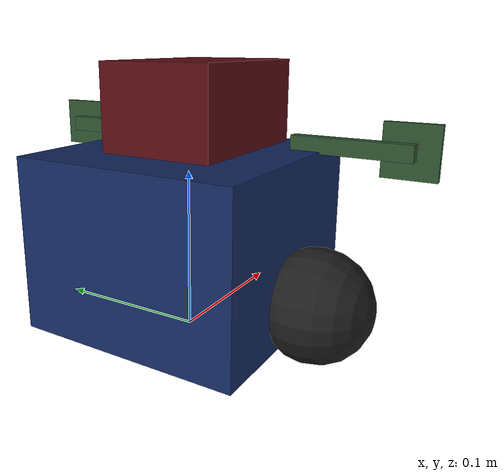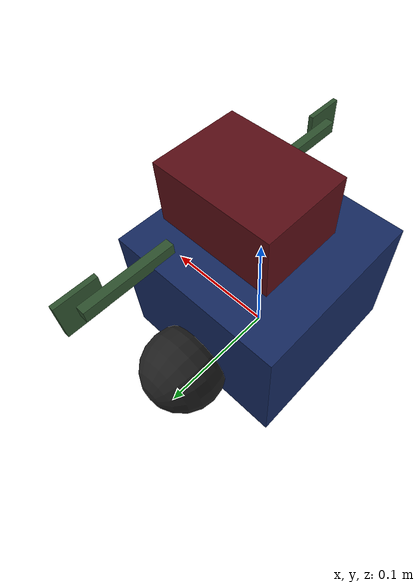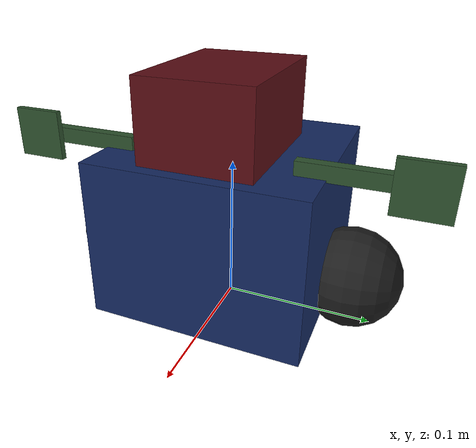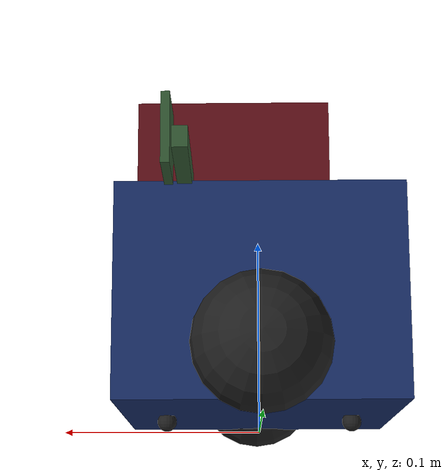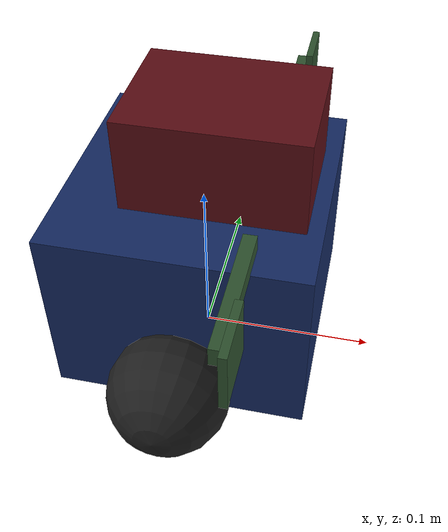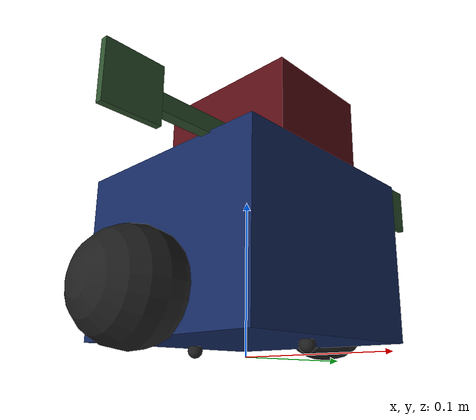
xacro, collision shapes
<?xml version="1.0"?>
<robot name="bot" xmlns:xacro="http://www.ros.org/wiki/xacro">

    <xacro:arg name="controller_manager_config"
               default="$(find bot_controller)/config/diff_drive_controller_config.yaml" />

    <xacro:include filename="common_properties.xacro" />

    <xacro:include filename="mobile_base.xacro" />
    <xacro:include filename="mobile_base_gazebo.xacro" />
    <xacro:include filename="mobile_base_ros2_control.xacro" />

    <xacro:include filename="imu.xacro" />
    <xacro:include filename="imu_gazebo.xacro" />

    <xacro:include filename="lidar.xacro" />
    <xacro:include filename="lidar_gazebo.xacro" />

    <xacro:include filename="right_camera.xacro" />
    <xacro:include filename="right_camera_gazebo.xacro" />

    <xacro:include filename="left_camera.xacro" />
    <xacro:include filename="left_camera_gazebo.xacro" />

</robot>

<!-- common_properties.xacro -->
<robot name="bot" xmlns:xacro="http://www.ros.org/wiki/xacro">

    <xacro:property name="base_length" value="0.14" />
    <xacro:property name="base_width" value="0.14" />
    <xacro:property name="base_height" value="0.078" />

    <xacro:property name="wheel_baseline" value="0.14" />
    <xacro:property name="wheel_radius" value="0.033" />

    <xacro:property name="castor_radius" value="0.0275" />
    <xacro:property name="castor_front_distance" value="0.04755" />
    <xacro:property name="castor_rear_distance" value="0.04755" />

    <xacro:property name="base_color_rgba" value="0.08 0.16 0.38 1.0" />
    <xacro:property name="wheel_color_rgba" value="0.12 0.12 0.12 1.0" />

</robot>

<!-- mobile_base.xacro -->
<robot name="bot" xmlns:xacro="http://www.ros.org/wiki/xacro">

    <link name="base_footprint" />

    <link name="base_link">

        <visual>
            <origin rpy="0 0 0" xyz="0 0 0"/>
            <geometry>
                <mesh filename="package://bot_description/meshes/base_link.STL" />
            </geometry>
            <material name="">
                <color rgba="${base_color_rgba}" />
            </material>
        </visual>

        <collision>
            <geometry>
                <!-- trial and error -->
                <box size="0.14 0.14 0.105" />
            </geometry>
            <origin xyz="0 0 ${0.033-0.005}" rpy="0 0 0" />
        </collision>

        <inertial>
            <origin xyz="0 0 0.04" rpy="0.0 0.25 0.3"/>
            <mass value="8.2573504e-01"/>
            <inertia ixx="2.2124416e-02" ixy="-1.2294101e-04" ixz="3.4938785e-04"
                                         iyy="2.1193702e-02"  iyz="-5.0120904e-05"
                                                              izz="2.0064271e-02"/>
        </inertial>

    </link>

    <link name="rw_link">

        <visual>
            <origin rpy="${pi/2.0} 0 0" xyz="0 0 0"/>
            <geometry>
                <mesh filename="package://bot_description/meshes/wheel_right_link.STL" />
            </geometry>
            <material name="">
                <color rgba="${wheel_color_rgba}" />
            </material>
        </visual>

        <collision>
            <origin xyz="0 -0.015 0" rpy="${pi/2.0} 0 0"/>
            <geometry>
                <sphere radius="${wheel_radius}"/>
            </geometry>
        </collision>

        <inertial>
            <origin xyz="0 -0.014 0" rpy="0 0 0"/>
            <mass value="0.0530086090966721"/>
            <inertia ixx="1.88176298336665E-05" ixy="-4.8444933029987E-10" ixz="1.88163708851143E-08"
                                                iyy="3.11510738647764E-05" iyz="-6.93560663069607E-11"
                                                                           izz="1.8801969558182E-05"/>
        </inertial>

    </link>

    <link name="lw_link">

        <visual>
            <origin rpy="${-pi/2.0} 0 0" xyz="0 0 0"/>
            <geometry>
                <mesh filename="package://bot_description/meshes/wheel_left_link.STL" />
            </geometry>
            <material name="">
                <color rgba="${wheel_color_rgba}" />
            </material>
        </visual>

        <collision>
            <origin xyz="0 0.015 0" rpy="${-pi/2.0} 0 0"/>
            <geometry>
                <sphere radius="${wheel_radius}"/>
            </geometry>
        </collision>

        <inertial>
            <origin xyz="0 0.014 0" rpy="0 0 0"/>
            <mass value="0.0530086043217644"/>
            <inertia ixx="1.8792911368909E-05" ixy="3.31256392204584E-10" ixz="-1.14082001662767E-08"
                                               iyy="3.11510738759073E-05" iyz="-3.60499245082192E-10"
                                                                          izz="1.88266886146847E-05"/>
        </inertial>

    </link>

    <link name="castor_front_link">

        <visual>
            <origin rpy="0 0 0" xyz="0 0 0" />
            <geometry>
                <mesh filename="package://bot_description/meshes/caster_front_link.STL" />
            </geometry>
            <material name="">
                <color rgba="${wheel_color_rgba}" />
            </material>
        </visual>

        <collision>
            <origin xyz="0 0 0" rpy="0 0 0"/>
            <geometry>
            <sphere radius="0.005"/>
            </geometry>
        </collision>

        <inertial>
            <origin xyz="3.89968128948481E-07 2.40073004698083E-07 0.00219173397061506" rpy="0 0 0"/>
            <mass value="1.44379265037903E-06"/>
            <inertia ixx="7.23075276010246E-11" ixy="-6.10956883467859E-16" ixz="2.22849693525031E-15"
                                                iyy="3.8713793085917E-11"   iyz="2.93909858781952E-15"
                                                                            izz="1.00967486676306E-10"/>
        </inertial>

    </link>

    <link name="castor_rear_link">
        <visual>
            <origin rpy="0 0 0" xyz="0 0 0" />
            <geometry>
                <mesh filename="package://bot_description/meshes/caster_rear_link.STL" />
            </geometry>
            <material name="">
                <color rgba="${wheel_color_rgba}" />
            </material>
        </visual>

        <collision>
            <origin xyz="0 0 0" rpy="0 0 0"/>
            <geometry>
                <sphere radius="0.005"/>
            </geometry>
        </collision>

        <inertial>
            <origin xyz="3.8996812895542E-07 2.40073004698083E-07 0.00219173397061509" rpy="0 0 0"/>
            <mass value="1.44379265037902E-06"/>
            <inertia ixx="7.23075276010246E-11" ixy="-6.10956872363424E-16" ixz="2.22849693527207E-15"
                                                iyy="3.87137930859167E-11"  iyz="2.939098587861E-15"
                                                                            izz="1.00967486676306E-10"/>
        </inertial>

    </link>

    <joint name="base_joint" type="fixed">
        <parent link="base_footprint" />
        <child link="base_link" />
        <origin rpy="0 0 0" xyz="0 0 0.033"/>
    </joint>

    <joint name="base_rw_joint" type="continuous" >
        <parent link="base_link" />
        <child link="rw_link" />
        <axis xyz="0 1 0" />
        <origin rpy="0 0 0" xyz="0 ${-wheel_baseline/2.0} 0" />
    </joint>

    <joint name="base_lw_joint" type="continuous" >
        <parent link="base_link" />
        <child link="lw_link" />
        <axis xyz="0 1 0" />
        <origin rpy="0 0 0" xyz="0 ${wheel_baseline/2.0} 0" />
    </joint>

    <joint name="base_castor_front_joint" type="fixed">
        <parent link="base_link" />
        <child link="castor_front_link" />
        <origin rpy="0 0 0" xyz="${castor_front_distance} 0 ${-castor_radius}" />
    </joint>

    <joint name="base_castor_rear_joint" type="fixed">
        <parent link="base_link" />
        <child link="castor_rear_link" />
        <origin rpy="0 0 0" xyz="${-castor_rear_distance} 0 ${-castor_radius}" />
    </joint>

</robot>

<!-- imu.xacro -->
<robot name="bot" xmlns:xacro="http://www.ros.org/wiki/xacro">

    <link name="imu_link">

        <visual>
            <origin xyz="0 0 0" rpy="0 0 0" />
            <geometry>
                <mesh filename="package://bot_description/meshes/imu_link.STL" />
            </geometry>
            <material name="">
                <color rgba="0.792156862745098 0.819607843137255 0.933333333333333 1" />
            </material>
        </visual>

        <collision>
            <origin xyz="-0.00554 0.00020 0.00110" rpy="0 0 0" />
            <geometry>
                <box size="0.017 0.0215 0.0035" />
            </geometry>
        </collision>

        <inertial>
            <origin xyz="-0.00552433659106688 0.000168210391520346 0.000514000497342681" rpy="0 0 0" />
            <mass value="0.000528415362211671" />
            <inertia ixx="1.46176048428261E-08" ixy="1.40015117949421E-10" ixz="-1.99633872937403E-12"
                                                iyy="8.59662482954888E-09" iyz="7.52375112767959E-12"
                                                                           izz="2.30279421279312E-08" />
        </inertial>

    </link>

    <joint name="base_imu_joint" type="fixed">
        <parent link="base_link" />
        <child link="imu_link" />
        <origin xyz="0 0 0.0698986241758014" rpy="0 0 0" />
        <axis xyz="0 0 0" />
    </joint>

</robot>

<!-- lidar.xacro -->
<robot name="bot" xmlns:xacro="http://www.ros.org/wiki/xacro">

    <link name="lidar_link">
        <visual>
            <origin xyz="0 0 0" rpy="0 0 0" />
            <geometry>
                <mesh filename="package://bot_description/meshes/laser_link.STL" />
            </geometry>
            <material name="">
                <color rgba="0.35 0.05 0.08 1.0" />
            </material>
        </visual>

        <collision>
            <origin xyz="-0.0127 0.0 -0.0151" rpy="0 0 0" />
            <geometry>
                <box size="0.0975 0.072 0.054" />
            </geometry>
        </collision>

        <inertial>
            <origin xyz="-0.011945780406062 -0.000381929217680526 -0.0170649378129477" rpy="0 0 0" />
            <mass value="0.073084435549317" />
            <inertia ixx="1.96074931730795E-05" ixy="-3.62091076640009E-07" ixz="4.28230084046735E-07"
                                                iyy="2.40983835136327E-05"  iyz="1.50180909250652E-08"
                                                                            izz="4.14184164228595E-05" />

        </inertial>
    </link>

    <joint name="base_lidar_joint" type="fixed">
        <parent link="base_link" />
        <child link="lidar_link" />
        <origin xyz="0 0 0.1208" rpy="0 0 ${pi}" />
    </joint>

</robot>

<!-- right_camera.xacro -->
<robot name="bot" xmlns:xacro="http://www.ros.org/wiki/xacro">

    <link name="right_shoulder_link">
        <visual>
            <origin xyz="-0.0396 0.12 -0.0842" rpy="0 0 0" />
            <geometry>
                <mesh filename="package://bot_description/meshes/cam_link.STL" />
            </geometry>
            <material name="">
                <color rgba="0.18 0.32 0.18 1.0" />
            </material>
        </visual>

        <collision>
            <origin xyz="-0.0036 0.0325 0.0" rpy="0 0 0" />
            <geometry>
                <box size="0.0072 0.0722 0.01" />
            </geometry>
        </collision>

        <collision>
            <origin xyz="0.002 0.0 0.0" rpy="0 0 0" />
            <geometry>
                <box size="0.004 0.032 0.032" />
            </geometry>
        </collision>

        <inertial>
            <origin xyz="-0.00099956 0.01614695 0.0" rpy="0 0 0" />
            <mass value="0.02062196" />
            <inertia ixx="1.05667e-05" ixy="8.66287e-07" ixz="0.0"
                                       iyy="1.12879e-06" iyz="0.0"
                                                         izz="9.88220e-06" />
        </inertial>
    </link>

    <link name="right_camera_link" />

    <link name="right_camera_link_optical" />

    <joint name="base_right_shoulder_joint" type="fixed">
        <parent link="base_link" />
        <child link="right_shoulder_link" />
        <origin xyz="0.0396 -0.12 0.0842" rpy="0 0 0" />
    </joint>

    <joint name="right_shoulder_right_camera_joint" type="fixed">
        <parent link="right_shoulder_link" />
        <child link="right_camera_link" />
        <origin xyz="0 0 0" rpy="0 0 0" />
    </joint>

    <joint name="right_camera_optical_joint" type="fixed">
        <parent link="right_camera_link" />
        <child link="right_camera_link_optical" />
        <origin xyz="0 0 0" rpy="${-pi/2} 0 ${-pi/2}" />
    </joint>

</robot>

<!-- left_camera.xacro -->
<robot name="bot" xmlns:xacro="http://www.ros.org/wiki/xacro">

    <link name="left_shoulder_link">
        <visual>
            <origin xyz="-0.0396 -0.12 0.0842" rpy="${pi} 0 0" />
            <geometry>
                <mesh filename="package://bot_description/meshes/cam_link.STL" />
            </geometry>
            <material name="">
                <color rgba="0.18 0.32 0.18 1.0" />
            </material>
        </visual>

        <collision>
            <origin xyz="-0.0036 -0.0325 0.0" rpy="0 0 0" />
            <geometry>
                <box size="0.0072 0.0722 0.01" />
            </geometry>
        </collision>

        <collision>
            <origin xyz="0.002 0.0 0.0" rpy="0 0 0" />
            <geometry>
                <box size="0.004 0.032 0.032" />
            </geometry>
        </collision>

        <inertial>
            <origin xyz="-0.00099956 -0.01614695 0.0" rpy="0 0 0" />
            <mass value="0.02062196" />
            <inertia ixx="1.05667e-05" ixy="-8.66287e-07" ixz="0.0"
                                    iyy="1.12879e-06"  iyz="0.0"
                                                        izz="9.88220e-06" />
        </inertial>
    </link>

    <link name="left_camera_link" />

    <link name="left_camera_link_optical" />

    <joint name="base_left_shoulder_joint" type="fixed">
        <parent link="base_link" />
        <child link="left_shoulder_link" />
        <origin xyz="0.0396 0.12 0.0842" rpy="0 0 0" />
    </joint>

    <joint name="left_shoulder_left_camera_joint" type="fixed">
        <parent link="left_shoulder_link" />
        <child link="left_camera_link" />
        <origin xyz="0 0 0" rpy="0 0 0" />
    </joint>

    <joint name="left_camera_optical_joint" type="fixed">
        <parent link="left_camera_link" />
        <child link="left_camera_link_optical" />
        <origin xyz="0 0 0" rpy="${-pi/2} 0 ${-pi/2}" />
    </joint>

</robot>
